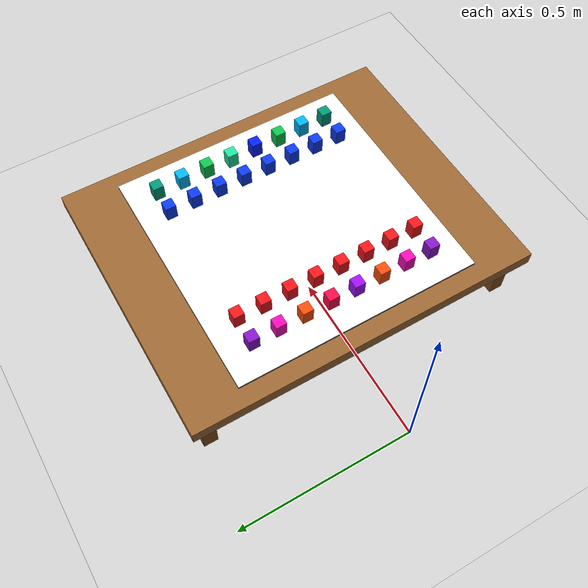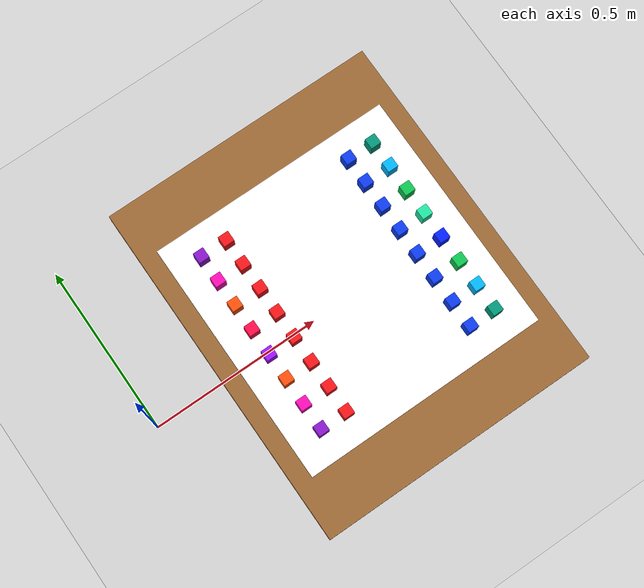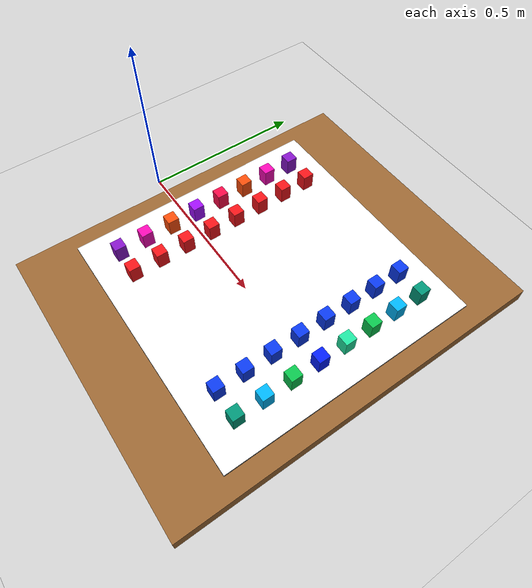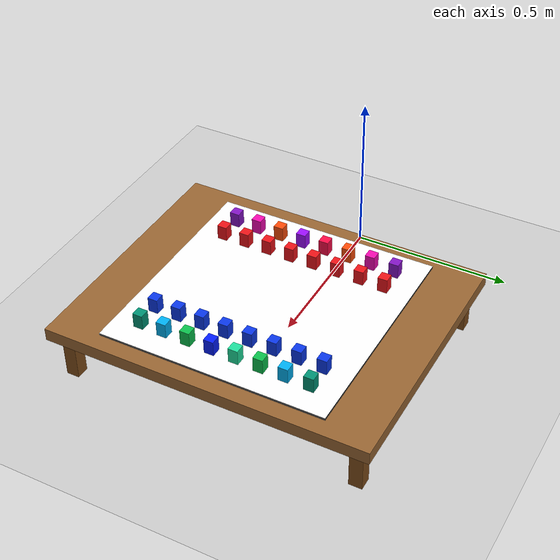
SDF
<?xml version="1.0" ?>
<sdf version="1.9">
  <world name="tabletop_world">
    <!-- GUI (default layout with custom camera pose) -->
    <gui fullscreen='0'>
      <plugin filename="MinimalScene" name="3D View">
        <gz-gui>
          <title>3D View</title>
          <property type="bool" key="showTitleBar">false</property>
          <property type="string" key="state">docked</property>
        </gz-gui>
        <engine>ogre2</engine>
        <scene>scene</scene>
        <ambient_light>0.4 0.4 0.4</ambient_light>
        <background_color>0.8 0.8 0.8</background_color>
        <camera_pose>1.31 0.98 1.07 0 0.39 -2.36</camera_pose>
      </plugin>
      <plugin filename="EntityContextMenuPlugin" name="Entity context menu">
        <gz-gui>
          <property key="state" type="string">floating</property>
          <property key="width" type="double">5</property>
          <property key="height" type="double">5</property>
          <property key="showTitleBar" type="bool">false</property>
        </gz-gui>
      </plugin>
      <plugin filename="GzSceneManager" name="Scene Manager">
        <gz-gui>
          <property key="resizable" type="bool">false</property>
          <property key="width" type="double">5</property>
          <property key="height" type="double">5</property>
          <property key="state" type="string">floating</property>
          <property key="showTitleBar" type="bool">false</property>
        </gz-gui>
      </plugin>
      <plugin filename="InteractiveViewControl" name="Interactive view control">
        <gz-gui>
          <property key="resizable" type="bool">false</property>
          <property key="width" type="double">5</property>
          <property key="height" type="double">5</property>
          <property key="state" type="string">floating</property>
          <property key="showTitleBar" type="bool">false</property>
        </gz-gui>
      </plugin>
      <plugin filename="CameraTracking" name="Camera Tracking">
        <gz-gui>
          <property key="resizable" type="bool">false</property>
          <property key="width" type="double">5</property>
          <property key="height" type="double">5</property>
          <property key="state" type="string">floating</property>
          <property key="showTitleBar" type="bool">false</property>
        </gz-gui>
      </plugin>
      <plugin filename="MarkerManager" name="Marker manager">
        <gz-gui>
          <property key="resizable" type="bool">false</property>
          <property key="width" type="double">5</property>
          <property key="height" type="double">5</property>
          <property key="state" type="string">floating</property>
          <property key="showTitleBar" type="bool">false</property>
        </gz-gui>
      </plugin>
      <plugin filename="SelectEntities" name="Select Entities">
        <gz-gui>
          <property key="resizable" type="bool">false</property>
          <property key="width" type="double">5</property>
          <property key="height" type="double">5</property>
          <property key="state" type="string">floating</property>
          <property key="showTitleBar" type="bool">false</property>
        </gz-gui>
      </plugin>
      <plugin filename="Spawn" name="Spawn Entities">
        <gz-gui>
          <property key="resizable" type="bool">false</property>
          <property key="width" type="double">5</property>
          <property key="height" type="double">5</property>
          <property key="state" type="string">floating</property>
          <property key="showTitleBar" type="bool">false</property>
        </gz-gui>
      </plugin>
      <plugin filename="VisualizationCapabilities" name="Visualization Capabilities">
        <gz-gui>
          <property key="resizable" type="bool">false</property>
          <property key="width" type="double">5</property>
          <property key="height" type="double">5</property>
          <property key="state" type="string">floating</property>
          <property key="showTitleBar" type="bool">false</property>
        </gz-gui>
      </plugin>
      <plugin filename="WorldControl" name="World control">
        <gz-gui>
          <title>World control</title>
          <property type="bool" key="showTitleBar">false</property>
          <property type="bool" key="resizable">false</property>
          <property type="double" key="height">72</property>
          <property type="double" key="z">1</property>
          <property type="string" key="state">floating</property>
          <anchors target="3D View">
            <line own="left" target="left"/>
            <line own="bottom" target="bottom"/>
          </anchors>
        </gz-gui>
        <play_pause>true</play_pause>
        <step>true</step>
        <start_paused>true</start_paused>
        <use_event>true</use_event>
      </plugin>
      <plugin filename="WorldStats" name="World stats">
        <gz-gui>
          <title>World stats</title>
          <property type="bool" key="showTitleBar">false</property>
          <property type="bool" key="resizable">false</property>
          <property type="double" key="height">110</property>
          <property type="double" key="width">290</property>
          <property type="double" key="z">1</property>
          <property type="string" key="state">floating</property>
          <anchors target="3D View">
            <line own="right" target="right"/>
            <line own="bottom" target="bottom"/>
          </anchors>
        </gz-gui>
        <sim_time>true</sim_time>
        <real_time>true</real_time>
        <real_time_factor>true</real_time_factor>
        <iterations>true</iterations>
      </plugin>
      <plugin filename="TransformControl" name="Transform control">
        <gz-gui>
          <property key="resizable" type="bool">false</property>
          <property key="x" type="double">0</property>
          <property key="y" type="double">50</property>
          <property key="width" type="double">250</property>
          <property key="height" type="double">50</property>
          <property key="state" type="string">floating</property>
          <property key="showTitleBar" type="bool">false</property>
          <property key="cardBackground" type="string">#777777</property>
        </gz-gui>
      </plugin>
      <plugin filename="ComponentInspector" name="Component inspector">
        <gz-gui>
          <property type="bool" key="showTitleBar">false</property>
          <property type="string" key="state">docked</property>
        </gz-gui>
      </plugin>
      <plugin filename="EntityTree" name="Entity tree">
        <gz-gui>
          <property type="bool" key="showTitleBar">false</property>
          <property type="string" key="state">docked</property>
        </gz-gui>
      </plugin>
    </gui>

    <!-- Physics -->
    <physics name="1ms" type="ignored">
      <max_step_size>0.001</max_step_size>
      <real_time_factor>1.0</real_time_factor>
    </physics>

    <!-- Plugins -->
    <plugin filename="gz-sim-physics-system" name="gz::sim::systems::Physics"/>
    <plugin filename="gz-sim-user-commands-system" name="gz::sim::systems::UserCommands"/>
    <plugin filename="gz-sim-scene-broadcaster-system" name="gz::sim::systems::SceneBroadcaster"/>
    <plugin filename="gz-sim-contact-system" name="gz::sim::systems::Contact"/>

    <!-- Lighting -->
    <light type="directional" name="sun">
      <cast_shadows>true</cast_shadows>
      <pose>0 0 10 0 0 0</pose>
      <diffuse>0.8 0.8 0.8 1</diffuse>
      <specular>0.2 0.2 0.2 1</specular>
      <attenuation>
        <range>1000</range>
        <constant>0.9</constant>
        <linear>0.01</linear>
        <quadratic>0.001</quadratic>
      </attenuation>
      <direction>-0.5 0.1 -0.9</direction>
    </light>

    <!-- Ground Plane -->
    <model name="ground_plane">
      <static>true</static>
      <link name="link">
        <collision name="collision">
          <geometry>
            <plane>
              <normal>0 0 1</normal>
              <size>100 100</size>
            </plane>
          </geometry>
        </collision>
        <visual name="visual">
          <geometry>
            <plane>
              <normal>0 0 1</normal>
              <size>100 100</size>
            </plane>
          </geometry>
          <material>
            <ambient>0.8 0.8 0.8 1</ambient>
            <diffuse>0.8 0.8 0.8 1</diffuse>
            <specular>0.8 0.8 0.8 1</specular>
          </material>
        </visual>
      </link>
    </model>

    <!-- Table -->
    <model name="table">
      <static>true</static>
      <pose>0.6 0 0 0 0 0</pose>
      <!-- Table top -->
      <link name="table_top">
        <pose>0 0 0.16 0 0 0</pose>
        <collision name="collision">
          <geometry>
            <box>
              <size>0.8 1.0 0.04</size>
            </box>
          </geometry>
        </collision>
        <visual name="visual">
          <geometry>
            <box>
              <size>0.8 1.0 0.04</size>
            </box>
          </geometry>
          <material>
            <ambient>0.6 0.4 0.2 1</ambient>
            <diffuse>0.6 0.4 0.2 1</diffuse>
            <specular>0.1 0.1 0.1 1</specular>
          </material>
        </visual>
      </link>
      <!-- Table legs -->
      <link name="leg1">
        <pose>0.35 0.45 0.07 0 0 0</pose>
        <collision name="collision">
          <geometry>
            <box>
              <size>0.04 0.04 0.14</size>
            </box>
          </geometry>
        </collision>
        <visual name="visual">
          <geometry>
            <box>
              <size>0.04 0.04 0.14</size>
            </box>
          </geometry>
          <material>
            <ambient>0.5 0.3 0.1 1</ambient>
            <diffuse>0.5 0.3 0.1 1</diffuse>
          </material>
        </visual>
      </link>
      <link name="leg2">
        <pose>0.35 -0.45 0.07 0 0 0</pose>
        <collision name="collision">
          <geometry>
            <box>
              <size>0.04 0.04 0.14</size>
            </box>
          </geometry>
        </collision>
        <visual name="visual">
          <geometry>
            <box>
              <size>0.04 0.04 0.14</size>
            </box>
          </geometry>
          <material>
            <ambient>0.5 0.3 0.1 1</ambient>
            <diffuse>0.5 0.3 0.1 1</diffuse>
          </material>
        </visual>
      </link>
      <link name="leg3">
        <pose>-0.35 0.45 0.07 0 0 0</pose>
        <collision name="collision">
          <geometry>
            <box>
              <size>0.04 0.04 0.14</size>
            </box>
          </geometry>
        </collision>
        <visual name="visual">
          <geometry>
            <box>
              <size>0.04 0.04 0.14</size>
            </box>
          </geometry>
          <material>
            <ambient>0.5 0.3 0.1 1</ambient>
            <diffuse>0.5 0.3 0.1 1</diffuse>
          </material>
        </visual>
      </link>
      <link name="leg4">
        <pose>-0.35 -0.45 0.07 0 0 0</pose>
        <collision name="collision">
          <geometry>
            <box>
              <size>0.04 0.04 0.14</size>
            </box>
          </geometry>
        </collision>
        <visual name="visual">
          <geometry>
            <box>
              <size>0.04 0.04 0.14</size>
            </box>
          </geometry>
          <material>
            <ambient>0.5 0.3 0.1 1</ambient>
            <diffuse>0.5 0.3 0.1 1</diffuse>
          </material>
        </visual>
      </link>
      <joint name="leg1_joint" type="fixed">
        <parent>table_top</parent>
        <child>leg1</child>
      </joint>
      <joint name="leg2_joint" type="fixed">
        <parent>table_top</parent>
        <child>leg2</child>
      </joint>
      <joint name="leg3_joint" type="fixed">
        <parent>table_top</parent>
        <child>leg3</child>
      </joint>
      <joint name="leg4_joint" type="fixed">
        <parent>table_top</parent>
        <child>leg4</child>
      </joint>
    </model>

    <!-- Chessboard + pieces sourced from ZeinBarhoum/chess_manipulator -->
    <include>
      <name>chessboard</name>
      <uri>model://chessboard</uri>
      <pose>0.6 0.0 0.182 0 0 1.5708</pose>
      <static>true</static>
    </include>
    <!-- Chess piece colors are assigned per world instance. The shared chess_piece_* models are geometry-only. -->
    <!-- white rook a1 -->
    <model name="piece11">
      <pose>0.335 -0.266 0.209 0 0 0</pose>
      <static>false</static>
      <link name="piece_link">
        <inertial><mass>0.02</mass><inertia><ixx>1.0e-5</ixx><ixy>0.0</ixy><ixz>0.0</ixz><iyy>1.0e-5</iyy><iyz>0.0</iyz><izz>1.0e-5</izz></inertia></inertial>
        <visual name="visual"><geometry><box><size>0.03 0.03 0.05</size></box></geometry><material>
          <ambient>0.32 0.04 0.48 1.0</ambient>
          <diffuse>0.52 0.08 0.78 1.0</diffuse>
          <specular>0.30 0.30 0.30 1.0</specular>
        </material></visual>
        <collision name="collision"><geometry><box><size>0.03 0.03 0.05</size></box></geometry><surface><friction><ode><mu>5.0</mu><mu2>5.0</mu2></ode></friction><contact><ode><kp>200000.0</kp><kd>20.0</kd><max_vel>0.1</max_vel><min_depth>0.001</min_depth></ode></contact></surface></collision>
      </link>
    </model>
    <!-- white knight b1 -->
    <model name="piece12">
      <pose>0.335 -0.190 0.209 0 0 0</pose>
      <static>false</static>
      <link name="piece_link">
        <inertial><mass>0.02</mass><inertia><ixx>1.0e-5</ixx><ixy>0.0</ixy><ixz>0.0</ixz><iyy>1.0e-5</iyy><iyz>0.0</iyz><izz>1.0e-5</izz></inertia></inertial>
        <visual name="visual"><geometry><box><size>0.03 0.03 0.05</size></box></geometry><material>
          <ambient>0.62 0.00 0.42 1.0</ambient>
          <diffuse>0.96 0.04 0.70 1.0</diffuse>
          <specular>0.30 0.30 0.30 1.0</specular>
        </material></visual>
        <collision name="collision"><geometry><box><size>0.03 0.03 0.05</size></box></geometry><surface><friction><ode><mu>5.0</mu><mu2>5.0</mu2></ode></friction><contact><ode><kp>200000.0</kp><kd>20.0</kd><max_vel>0.1</max_vel><min_depth>0.001</min_depth></ode></contact></surface></collision>
      </link>
    </model>
    <!-- white bishop c1 -->
    <model name="piece13">
      <pose>0.335 -0.114 0.209 0 0 0</pose>
      <static>false</static>
      <link name="piece_link">
        <inertial><mass>0.02</mass><inertia><ixx>1.0e-5</ixx><ixy>0.0</ixy><ixz>0.0</ixz><iyy>1.0e-5</iyy><iyz>0.0</iyz><izz>1.0e-5</izz></inertia></inertial>
        <visual name="visual"><geometry><box><size>0.03 0.03 0.05</size></box></geometry><material>
          <ambient>0.74 0.18 0.02 1.0</ambient>
          <diffuse>1.00 0.30 0.04 1.0</diffuse>
          <specular>0.30 0.30 0.30 1.0</specular>
        </material></visual>
        <collision name="collision"><geometry><box><size>0.03 0.03 0.05</size></box></geometry><surface><friction><ode><mu>5.0</mu><mu2>5.0</mu2></ode></friction><contact><ode><kp>200000.0</kp><kd>20.0</kd><max_vel>0.1</max_vel><min_depth>0.001</min_depth></ode></contact></surface></collision>
      </link>
    </model>
    <!-- white queen d1 -->
    <model name="piece14">
      <pose>0.335 -0.038 0.209 0 0 0</pose>
      <static>false</static>
      <link name="piece_link">
        <inertial><mass>0.02</mass><inertia><ixx>1.0e-5</ixx><ixy>0.0</ixy><ixz>0.0</ixz><iyy>1.0e-5</iyy><iyz>0.0</iyz><izz>1.0e-5</izz></inertia></inertial>
        <visual name="visual"><geometry><box><size>0.03 0.03 0.05</size></box></geometry><material>
          <ambient>0.38 0.02 0.70 1.0</ambient>
          <diffuse>0.62 0.06 1.00 1.0</diffuse>
          <specular>0.30 0.30 0.30 1.0</specular>
        </material></visual>
        <collision name="collision"><geometry><box><size>0.03 0.03 0.05</size></box></geometry><surface><friction><ode><mu>5.0</mu><mu2>5.0</mu2></ode></friction><contact><ode><kp>200000.0</kp><kd>20.0</kd><max_vel>0.1</max_vel><min_depth>0.001</min_depth></ode></contact></surface></collision>
      </link>
    </model>
    <!-- white king e1 -->
    <model name="piece15">
      <pose>0.335 0.038 0.209 0 0 0</pose>
      <static>false</static>
      <link name="piece_link">
        <inertial><mass>0.02</mass><inertia><ixx>1.0e-5</ixx><ixy>0.0</ixy><ixz>0.0</ixz><iyy>1.0e-5</iyy><iyz>0.0</iyz><izz>1.0e-5</izz></inertia></inertial>
        <visual name="visual"><geometry><box><size>0.03 0.03 0.05</size></box></geometry><material>
          <ambient>0.72 0.00 0.18 1.0</ambient>
          <diffuse>1.00 0.04 0.28 1.0</diffuse>
          <specular>0.30 0.30 0.30 1.0</specular>
        </material></visual>
        <collision name="collision"><geometry><box><size>0.03 0.03 0.05</size></box></geometry><surface><friction><ode><mu>5.0</mu><mu2>5.0</mu2></ode></friction><contact><ode><kp>200000.0</kp><kd>20.0</kd><max_vel>0.1</max_vel><min_depth>0.001</min_depth></ode></contact></surface></collision>
      </link>
    </model>
    <!-- white bishop f1 -->
    <model name="piece16">
      <pose>0.335 0.114 0.209 0 0 0</pose>
      <static>false</static>
      <link name="piece_link">
        <inertial><mass>0.02</mass><inertia><ixx>1.0e-5</ixx><ixy>0.0</ixy><ixz>0.0</ixz><iyy>1.0e-5</iyy><iyz>0.0</iyz><izz>1.0e-5</izz></inertia></inertial>
        <visual name="visual"><geometry><box><size>0.03 0.03 0.05</size></box></geometry><material>
          <ambient>0.74 0.18 0.02 1.0</ambient>
          <diffuse>1.00 0.30 0.04 1.0</diffuse>
          <specular>0.30 0.30 0.30 1.0</specular>
        </material></visual>
        <collision name="collision"><geometry><box><size>0.03 0.03 0.05</size></box></geometry><surface><friction><ode><mu>5.0</mu><mu2>5.0</mu2></ode></friction><contact><ode><kp>200000.0</kp><kd>20.0</kd><max_vel>0.1</max_vel><min_depth>0.001</min_depth></ode></contact></surface></collision>
      </link>
    </model>
    <!-- white knight g1 -->
    <model name="piece17">
      <pose>0.335 0.190 0.209 0 0 0</pose>
      <static>false</static>
      <link name="piece_link">
        <inertial><mass>0.02</mass><inertia><ixx>1.0e-5</ixx><ixy>0.0</ixy><ixz>0.0</ixz><iyy>1.0e-5</iyy><iyz>0.0</iyz><izz>1.0e-5</izz></inertia></inertial>
        <visual name="visual"><geometry><box><size>0.03 0.03 0.05</size></box></geometry><material>
          <ambient>0.62 0.00 0.42 1.0</ambient>
          <diffuse>0.96 0.04 0.70 1.0</diffuse>
          <specular>0.30 0.30 0.30 1.0</specular>
        </material></visual>
        <collision name="collision"><geometry><box><size>0.03 0.03 0.05</size></box></geometry><surface><friction><ode><mu>5.0</mu><mu2>5.0</mu2></ode></friction><contact><ode><kp>200000.0</kp><kd>20.0</kd><max_vel>0.1</max_vel><min_depth>0.001</min_depth></ode></contact></surface></collision>
      </link>
    </model>
    <!-- white rook h1 -->
    <model name="piece18">
      <pose>0.335 0.266 0.209 0 0 0</pose>
      <static>false</static>
      <link name="piece_link">
        <inertial><mass>0.02</mass><inertia><ixx>1.0e-5</ixx><ixy>0.0</ixy><ixz>0.0</ixz><iyy>1.0e-5</iyy><iyz>0.0</iyz><izz>1.0e-5</izz></inertia></inertial>
        <visual name="visual"><geometry><box><size>0.03 0.03 0.05</size></box></geometry><material>
          <ambient>0.32 0.04 0.48 1.0</ambient>
          <diffuse>0.52 0.08 0.78 1.0</diffuse>
          <specular>0.30 0.30 0.30 1.0</specular>
        </material></visual>
        <collision name="collision"><geometry><box><size>0.03 0.03 0.05</size></box></geometry><surface><friction><ode><mu>5.0</mu><mu2>5.0</mu2></ode></friction><contact><ode><kp>200000.0</kp><kd>20.0</kd><max_vel>0.1</max_vel><min_depth>0.001</min_depth></ode></contact></surface></collision>
      </link>
    </model>
    <!-- white pawn a2 -->
    <model name="piece21">
      <pose>0.411 -0.266 0.209 0 0 0</pose>
      <static>false</static>
      <link name="piece_link">
        <inertial><mass>0.02</mass><inertia><ixx>1.0e-5</ixx><ixy>0.0</ixy><ixz>0.0</ixz><iyy>1.0e-5</iyy><iyz>0.0</iyz><izz>1.0e-5</izz></inertia></inertial>
        <visual name="visual"><geometry><box><size>0.03 0.03 0.05</size></box></geometry><material>
          <ambient>0.62 0.04 0.06 1.0</ambient>
          <diffuse>0.94 0.08 0.10 1.0</diffuse>
          <specular>0.30 0.30 0.30 1.0</specular>
        </material></visual>
        <collision name="collision"><geometry><box><size>0.03 0.03 0.05</size></box></geometry><surface><friction><ode><mu>5.0</mu><mu2>5.0</mu2></ode></friction><contact><ode><kp>200000.0</kp><kd>20.0</kd><max_vel>0.1</max_vel><min_depth>0.001</min_depth></ode></contact></surface></collision>
      </link>
    </model>
    <!-- white pawn b2 -->
    <model name="piece22">
      <pose>0.411 -0.190 0.209 0 0 0</pose>
      <static>false</static>
      <link name="piece_link">
        <inertial><mass>0.02</mass><inertia><ixx>1.0e-5</ixx><ixy>0.0</ixy><ixz>0.0</ixz><iyy>1.0e-5</iyy><iyz>0.0</iyz><izz>1.0e-5</izz></inertia></inertial>
        <visual name="visual"><geometry><box><size>0.03 0.03 0.05</size></box></geometry><material>
          <ambient>0.62 0.04 0.06 1.0</ambient>
          <diffuse>0.94 0.08 0.10 1.0</diffuse>
          <specular>0.30 0.30 0.30 1.0</specular>
        </material></visual>
        <collision name="collision"><geometry><box><size>0.03 0.03 0.05</size></box></geometry><surface><friction><ode><mu>5.0</mu><mu2>5.0</mu2></ode></friction><contact><ode><kp>200000.0</kp><kd>20.0</kd><max_vel>0.1</max_vel><min_depth>0.001</min_depth></ode></contact></surface></collision>
      </link>
    </model>
    <!-- white pawn c2 -->
    <model name="piece23">
      <pose>0.411 -0.114 0.209 0 0 0</pose>
      <static>false</static>
      <link name="piece_link">
        <inertial><mass>0.02</mass><inertia><ixx>1.0e-5</ixx><ixy>0.0</ixy><ixz>0.0</ixz><iyy>1.0e-5</iyy><iyz>0.0</iyz><izz>1.0e-5</izz></inertia></inertial>
        <visual name="visual"><geometry><box><size>0.03 0.03 0.05</size></box></geometry><material>
          <ambient>0.62 0.04 0.06 1.0</ambient>
          <diffuse>0.94 0.08 0.10 1.0</diffuse>
          <specular>0.30 0.30 0.30 1.0</specular>
        </material></visual>
        <collision name="collision"><geometry><box><size>0.03 0.03 0.05</size></box></geometry><surface><friction><ode><mu>5.0</mu><mu2>5.0</mu2></ode></friction><contact><ode><kp>200000.0</kp><kd>20.0</kd><max_vel>0.1</max_vel><min_depth>0.001</min_depth></ode></contact></surface></collision>
      </link>
    </model>
    <!-- white pawn d2 -->
    <model name="piece24">
      <pose>0.411 -0.038 0.209 0 0 0</pose>
      <static>false</static>
      <link name="piece_link">
        <inertial><mass>0.02</mass><inertia><ixx>1.0e-5</ixx><ixy>0.0</ixy><ixz>0.0</ixz><iyy>1.0e-5</iyy><iyz>0.0</iyz><izz>1.0e-5</izz></inertia></inertial>
        <visual name="visual"><geometry><box><size>0.03 0.03 0.05</size></box></geometry><material>
          <ambient>0.62 0.04 0.06 1.0</ambient>
          <diffuse>0.94 0.08 0.10 1.0</diffuse>
          <specular>0.30 0.30 0.30 1.0</specular>
        </material></visual>
        <collision name="collision"><geometry><box><size>0.03 0.03 0.05</size></box></geometry><surface><friction><ode><mu>5.0</mu><mu2>5.0</mu2></ode></friction><contact><ode><kp>200000.0</kp><kd>20.0</kd><max_vel>0.1</max_vel><min_depth>0.001</min_depth></ode></contact></surface></collision>
      </link>
    </model>
    <!-- white pawn e2 -->
    <model name="piece25">
      <pose>0.411 0.038 0.209 0 0 0</pose>
      <static>false</static>
      <link name="piece_link">
        <inertial><mass>0.02</mass><inertia><ixx>1.0e-5</ixx><ixy>0.0</ixy><ixz>0.0</ixz><iyy>1.0e-5</iyy><iyz>0.0</iyz><izz>1.0e-5</izz></inertia></inertial>
        <visual name="visual"><geometry><box><size>0.03 0.03 0.05</size></box></geometry><material>
          <ambient>0.62 0.04 0.06 1.0</ambient>
          <diffuse>0.94 0.08 0.10 1.0</diffuse>
          <specular>0.30 0.30 0.30 1.0</specular>
        </material></visual>
        <collision name="collision"><geometry><box><size>0.03 0.03 0.05</size></box></geometry><surface><friction><ode><mu>5.0</mu><mu2>5.0</mu2></ode></friction><contact><ode><kp>200000.0</kp><kd>20.0</kd><max_vel>0.1</max_vel><min_depth>0.001</min_depth></ode></contact></surface></collision>
      </link>
    </model>
    <!-- white pawn f2 -->
    <model name="piece26">
      <pose>0.411 0.114 0.209 0 0 0</pose>
      <static>false</static>
      <link name="piece_link">
        <inertial><mass>0.02</mass><inertia><ixx>1.0e-5</ixx><ixy>0.0</ixy><ixz>0.0</ixz><iyy>1.0e-5</iyy><iyz>0.0</iyz><izz>1.0e-5</izz></inertia></inertial>
        <visual name="visual"><geometry><box><size>0.03 0.03 0.05</size></box></geometry><material>
          <ambient>0.62 0.04 0.06 1.0</ambient>
          <diffuse>0.94 0.08 0.10 1.0</diffuse>
          <specular>0.30 0.30 0.30 1.0</specular>
        </material></visual>
        <collision name="collision"><geometry><box><size>0.03 0.03 0.05</size></box></geometry><surface><friction><ode><mu>5.0</mu><mu2>5.0</mu2></ode></friction><contact><ode><kp>200000.0</kp><kd>20.0</kd><max_vel>0.1</max_vel><min_depth>0.001</min_depth></ode></contact></surface></collision>
      </link>
    </model>
    <!-- white pawn g2 -->
    <model name="piece27">
      <pose>0.411 0.190 0.209 0 0 0</pose>
      <static>false</static>
      <link name="piece_link">
        <inertial><mass>0.02</mass><inertia><ixx>1.0e-5</ixx><ixy>0.0</ixy><ixz>0.0</ixz><iyy>1.0e-5</iyy><iyz>0.0</iyz><izz>1.0e-5</izz></inertia></inertial>
        <visual name="visual"><geometry><box><size>0.03 0.03 0.05</size></box></geometry><material>
          <ambient>0.62 0.04 0.06 1.0</ambient>
          <diffuse>0.94 0.08 0.10 1.0</diffuse>
          <specular>0.30 0.30 0.30 1.0</specular>
        </material></visual>
        <collision name="collision"><geometry><box><size>0.03 0.03 0.05</size></box></geometry><surface><friction><ode><mu>5.0</mu><mu2>5.0</mu2></ode></friction><contact><ode><kp>200000.0</kp><kd>20.0</kd><max_vel>0.1</max_vel><min_depth>0.001</min_depth></ode></contact></surface></collision>
      </link>
    </model>
    <!-- white pawn h2 -->
    <model name="piece28">
      <pose>0.411 0.266 0.209 0 0 0</pose>
      <static>false</static>
      <link name="piece_link">
        <inertial><mass>0.02</mass><inertia><ixx>1.0e-5</ixx><ixy>0.0</ixy><ixz>0.0</ixz><iyy>1.0e-5</iyy><iyz>0.0</iyz><izz>1.0e-5</izz></inertia></inertial>
        <visual name="visual"><geometry><box><size>0.03 0.03 0.05</size></box></geometry><material>
          <ambient>0.62 0.04 0.06 1.0</ambient>
          <diffuse>0.94 0.08 0.10 1.0</diffuse>
          <specular>0.30 0.30 0.30 1.0</specular>
        </material></visual>
        <collision name="collision"><geometry><box><size>0.03 0.03 0.05</size></box></geometry><surface><friction><ode><mu>5.0</mu><mu2>5.0</mu2></ode></friction><contact><ode><kp>200000.0</kp><kd>20.0</kd><max_vel>0.1</max_vel><min_depth>0.001</min_depth></ode></contact></surface></collision>
      </link>
    </model>
    <!-- black pawn a7 -->
    <model name="piece71">
      <pose>0.791 -0.266 0.209 0 0 0</pose>
      <static>false</static>
      <link name="piece_link">
        <inertial><mass>0.02</mass><inertia><ixx>1.0e-5</ixx><ixy>0.0</ixy><ixz>0.0</ixz><iyy>1.0e-5</iyy><iyz>0.0</iyz><izz>1.0e-5</izz></inertia></inertial>
        <visual name="visual"><geometry><box><size>0.03 0.03 0.05</size></box></geometry><material>
          <ambient>0.02 0.12 0.52 1.0</ambient>
          <diffuse>0.04 0.22 0.92 1.0</diffuse>
          <specular>0.30 0.30 0.30 1.0</specular>
        </material></visual>
        <collision name="collision"><geometry><box><size>0.03 0.03 0.05</size></box></geometry><surface><friction><ode><mu>5.0</mu><mu2>5.0</mu2></ode></friction><contact><ode><kp>200000.0</kp><kd>20.0</kd><max_vel>0.1</max_vel><min_depth>0.001</min_depth></ode></contact></surface></collision>
      </link>
    </model>
    <!-- black pawn b7 -->
    <model name="piece72">
      <pose>0.791 -0.190 0.209 0 0 0</pose>
      <static>false</static>
      <link name="piece_link">
        <inertial><mass>0.02</mass><inertia><ixx>1.0e-5</ixx><ixy>0.0</ixy><ixz>0.0</ixz><iyy>1.0e-5</iyy><iyz>0.0</iyz><izz>1.0e-5</izz></inertia></inertial>
        <visual name="visual"><geometry><box><size>0.03 0.03 0.05</size></box></geometry><material>
          <ambient>0.02 0.12 0.52 1.0</ambient>
          <diffuse>0.04 0.22 0.92 1.0</diffuse>
          <specular>0.30 0.30 0.30 1.0</specular>
        </material></visual>
        <collision name="collision"><geometry><box><size>0.03 0.03 0.05</size></box></geometry><surface><friction><ode><mu>5.0</mu><mu2>5.0</mu2></ode></friction><contact><ode><kp>200000.0</kp><kd>20.0</kd><max_vel>0.1</max_vel><min_depth>0.001</min_depth></ode></contact></surface></collision>
      </link>
    </model>
    <!-- black pawn c7 -->
    <model name="piece73">
      <pose>0.791 -0.114 0.209 0 0 0</pose>
      <static>false</static>
      <link name="piece_link">
        <inertial><mass>0.02</mass><inertia><ixx>1.0e-5</ixx><ixy>0.0</ixy><ixz>0.0</ixz><iyy>1.0e-5</iyy><iyz>0.0</iyz><izz>1.0e-5</izz></inertia></inertial>
        <visual name="visual"><geometry><box><size>0.03 0.03 0.05</size></box></geometry><material>
          <ambient>0.02 0.12 0.52 1.0</ambient>
          <diffuse>0.04 0.22 0.92 1.0</diffuse>
          <specular>0.30 0.30 0.30 1.0</specular>
        </material></visual>
        <collision name="collision"><geometry><box><size>0.03 0.03 0.05</size></box></geometry><surface><friction><ode><mu>5.0</mu><mu2>5.0</mu2></ode></friction><contact><ode><kp>200000.0</kp><kd>20.0</kd><max_vel>0.1</max_vel><min_depth>0.001</min_depth></ode></contact></surface></collision>
      </link>
    </model>
    <!-- black pawn d7 -->
    <model name="piece74">
      <pose>0.791 -0.038 0.209 0 0 0</pose>
      <static>false</static>
      <link name="piece_link">
        <inertial><mass>0.02</mass><inertia><ixx>1.0e-5</ixx><ixy>0.0</ixy><ixz>0.0</ixz><iyy>1.0e-5</iyy><iyz>0.0</iyz><izz>1.0e-5</izz></inertia></inertial>
        <visual name="visual"><geometry><box><size>0.03 0.03 0.05</size></box></geometry><material>
          <ambient>0.02 0.12 0.52 1.0</ambient>
          <diffuse>0.04 0.22 0.92 1.0</diffuse>
          <specular>0.30 0.30 0.30 1.0</specular>
        </material></visual>
        <collision name="collision"><geometry><box><size>0.03 0.03 0.05</size></box></geometry><surface><friction><ode><mu>5.0</mu><mu2>5.0</mu2></ode></friction><contact><ode><kp>200000.0</kp><kd>20.0</kd><max_vel>0.1</max_vel><min_depth>0.001</min_depth></ode></contact></surface></collision>
      </link>
    </model>
    <!-- black pawn e7 -->
    <model name="piece75">
      <pose>0.791 0.038 0.209 0 0 0</pose>
      <static>false</static>
      <link name="piece_link">
        <inertial><mass>0.02</mass><inertia><ixx>1.0e-5</ixx><ixy>0.0</ixy><ixz>0.0</ixz><iyy>1.0e-5</iyy><iyz>0.0</iyz><izz>1.0e-5</izz></inertia></inertial>
        <visual name="visual"><geometry><box><size>0.03 0.03 0.05</size></box></geometry><material>
          <ambient>0.02 0.12 0.52 1.0</ambient>
          <diffuse>0.04 0.22 0.92 1.0</diffuse>
          <specular>0.30 0.30 0.30 1.0</specular>
        </material></visual>
        <collision name="collision"><geometry><box><size>0.03 0.03 0.05</size></box></geometry><surface><friction><ode><mu>5.0</mu><mu2>5.0</mu2></ode></friction><contact><ode><kp>200000.0</kp><kd>20.0</kd><max_vel>0.1</max_vel><min_depth>0.001</min_depth></ode></contact></surface></collision>
      </link>
    </model>
    <!-- black pawn f7 -->
    <model name="piece76">
      <pose>0.791 0.114 0.209 0 0 0</pose>
      <static>false</static>
      <link name="piece_link">
        <inertial><mass>0.02</mass><inertia><ixx>1.0e-5</ixx><ixy>0.0</ixy><ixz>0.0</ixz><iyy>1.0e-5</iyy><iyz>0.0</iyz><izz>1.0e-5</izz></inertia></inertial>
        <visual name="visual"><geometry><box><size>0.03 0.03 0.05</size></box></geometry><material>
          <ambient>0.02 0.12 0.52 1.0</ambient>
          <diffuse>0.04 0.22 0.92 1.0</diffuse>
          <specular>0.30 0.30 0.30 1.0</specular>
        </material></visual>
        <collision name="collision"><geometry><box><size>0.03 0.03 0.05</size></box></geometry><surface><friction><ode><mu>5.0</mu><mu2>5.0</mu2></ode></friction><contact><ode><kp>200000.0</kp><kd>20.0</kd><max_vel>0.1</max_vel><min_depth>0.001</min_depth></ode></contact></surface></collision>
      </link>
    </model>
    <!-- black pawn g7 -->
    <model name="piece77">
      <pose>0.791 0.190 0.209 0 0 0</pose>
      <static>false</static>
      <link name="piece_link">
        <inertial><mass>0.02</mass><inertia><ixx>1.0e-5</ixx><ixy>0.0</ixy><ixz>0.0</ixz><iyy>1.0e-5</iyy><iyz>0.0</iyz><izz>1.0e-5</izz></inertia></inertial>
        <visual name="visual"><geometry><box><size>0.03 0.03 0.05</size></box></geometry><material>
          <ambient>0.02 0.12 0.52 1.0</ambient>
          <diffuse>0.04 0.22 0.92 1.0</diffuse>
          <specular>0.30 0.30 0.30 1.0</specular>
        </material></visual>
        <collision name="collision"><geometry><box><size>0.03 0.03 0.05</size></box></geometry><surface><friction><ode><mu>5.0</mu><mu2>5.0</mu2></ode></friction><contact><ode><kp>200000.0</kp><kd>20.0</kd><max_vel>0.1</max_vel><min_depth>0.001</min_depth></ode></contact></surface></collision>
      </link>
    </model>
    <!-- black pawn h7 -->
    <model name="piece78">
      <pose>0.791 0.266 0.209 0 0 0</pose>
      <static>false</static>
      <link name="piece_link">
        <inertial><mass>0.02</mass><inertia><ixx>1.0e-5</ixx><ixy>0.0</ixy><ixz>0.0</ixz><iyy>1.0e-5</iyy><iyz>0.0</iyz><izz>1.0e-5</izz></inertia></inertial>
        <visual name="visual"><geometry><box><size>0.03 0.03 0.05</size></box></geometry><material>
          <ambient>0.02 0.12 0.52 1.0</ambient>
          <diffuse>0.04 0.22 0.92 1.0</diffuse>
          <specular>0.30 0.30 0.30 1.0</specular>
        </material></visual>
        <collision name="collision"><geometry><box><size>0.03 0.03 0.05</size></box></geometry><surface><friction><ode><mu>5.0</mu><mu2>5.0</mu2></ode></friction><contact><ode><kp>200000.0</kp><kd>20.0</kd><max_vel>0.1</max_vel><min_depth>0.001</min_depth></ode></contact></surface></collision>
      </link>
    </model>
    <!-- black rook a8 -->
    <model name="piece81">
      <pose>0.867 -0.266 0.209 0 0 0</pose>
      <static>false</static>
      <link name="piece_link">
        <inertial><mass>0.02</mass><inertia><ixx>1.0e-5</ixx><ixy>0.0</ixy><ixz>0.0</ixz><iyy>1.0e-5</iyy><iyz>0.0</iyz><izz>1.0e-5</izz></inertia></inertial>
        <visual name="visual"><geometry><box><size>0.03 0.03 0.05</size></box></geometry><material>
          <ambient>0.00 0.34 0.28 1.0</ambient>
          <diffuse>0.00 0.58 0.46 1.0</diffuse>
          <specular>0.30 0.30 0.30 1.0</specular>
        </material></visual>
        <collision name="collision"><geometry><box><size>0.03 0.03 0.05</size></box></geometry><surface><friction><ode><mu>5.0</mu><mu2>5.0</mu2></ode></friction><contact><ode><kp>200000.0</kp><kd>20.0</kd><max_vel>0.1</max_vel><min_depth>0.001</min_depth></ode></contact></surface></collision>
      </link>
    </model>
    <!-- black knight b8 -->
    <model name="piece82">
      <pose>0.867 -0.190 0.209 0 0 0</pose>
      <static>false</static>
      <link name="piece_link">
        <inertial><mass>0.02</mass><inertia><ixx>1.0e-5</ixx><ixy>0.0</ixy><ixz>0.0</ixz><iyy>1.0e-5</iyy><iyz>0.0</iyz><izz>1.0e-5</izz></inertia></inertial>
        <visual name="visual"><geometry><box><size>0.03 0.03 0.05</size></box></geometry><material>
          <ambient>0.00 0.42 0.62 1.0</ambient>
          <diffuse>0.00 0.70 0.96 1.0</diffuse>
          <specular>0.30 0.30 0.30 1.0</specular>
        </material></visual>
        <collision name="collision"><geometry><box><size>0.03 0.03 0.05</size></box></geometry><surface><friction><ode><mu>5.0</mu><mu2>5.0</mu2></ode></friction><contact><ode><kp>200000.0</kp><kd>20.0</kd><max_vel>0.1</max_vel><min_depth>0.001</min_depth></ode></contact></surface></collision>
      </link>
    </model>
    <!-- black bishop c8 -->
    <model name="piece83">
      <pose>0.867 -0.114 0.209 0 0 0</pose>
      <static>false</static>
      <link name="piece_link">
        <inertial><mass>0.02</mass><inertia><ixx>1.0e-5</ixx><ixy>0.0</ixy><ixz>0.0</ixz><iyy>1.0e-5</iyy><iyz>0.0</iyz><izz>1.0e-5</izz></inertia></inertial>
        <visual name="visual"><geometry><box><size>0.03 0.03 0.05</size></box></geometry><material>
          <ambient>0.02 0.46 0.18 1.0</ambient>
          <diffuse>0.04 0.76 0.30 1.0</diffuse>
          <specular>0.30 0.30 0.30 1.0</specular>
        </material></visual>
        <collision name="collision"><geometry><box><size>0.03 0.03 0.05</size></box></geometry><surface><friction><ode><mu>5.0</mu><mu2>5.0</mu2></ode></friction><contact><ode><kp>200000.0</kp><kd>20.0</kd><max_vel>0.1</max_vel><min_depth>0.001</min_depth></ode></contact></surface></collision>
      </link>
    </model>
    <!-- black queen d8 -->
    <model name="piece84">
      <pose>0.867 -0.038 0.209 0 0 0</pose>
      <static>false</static>
      <link name="piece_link">
        <inertial><mass>0.02</mass><inertia><ixx>1.0e-5</ixx><ixy>0.0</ixy><ixz>0.0</ixz><iyy>1.0e-5</iyy><iyz>0.0</iyz><izz>1.0e-5</izz></inertia></inertial>
        <visual name="visual"><geometry><box><size>0.03 0.03 0.05</size></box></geometry><material>
          <ambient>0.00 0.06 0.78 1.0</ambient>
          <diffuse>0.02 0.12 1.00 1.0</diffuse>
          <specular>0.30 0.30 0.30 1.0</specular>
        </material></visual>
        <collision name="collision"><geometry><box><size>0.03 0.03 0.05</size></box></geometry><surface><friction><ode><mu>5.0</mu><mu2>5.0</mu2></ode></friction><contact><ode><kp>200000.0</kp><kd>20.0</kd><max_vel>0.1</max_vel><min_depth>0.001</min_depth></ode></contact></surface></collision>
      </link>
    </model>
    <!-- black king e8 -->
    <model name="piece85">
      <pose>0.867 0.038 0.209 0 0 0</pose>
      <static>false</static>
      <link name="piece_link">
        <inertial><mass>0.02</mass><inertia><ixx>1.0e-5</ixx><ixy>0.0</ixy><ixz>0.0</ixz><iyy>1.0e-5</iyy><iyz>0.0</iyz><izz>1.0e-5</izz></inertia></inertial>
        <visual name="visual"><geometry><box><size>0.03 0.03 0.05</size></box></geometry><material>
          <ambient>0.08 0.52 0.38 1.0</ambient>
          <diffuse>0.12 0.88 0.62 1.0</diffuse>
          <specular>0.30 0.30 0.30 1.0</specular>
        </material></visual>
        <collision name="collision"><geometry><box><size>0.03 0.03 0.05</size></box></geometry><surface><friction><ode><mu>5.0</mu><mu2>5.0</mu2></ode></friction><contact><ode><kp>200000.0</kp><kd>20.0</kd><max_vel>0.1</max_vel><min_depth>0.001</min_depth></ode></contact></surface></collision>
      </link>
    </model>
    <!-- black bishop f8 -->
    <model name="piece86">
      <pose>0.867 0.114 0.209 0 0 0</pose>
      <static>false</static>
      <link name="piece_link">
        <inertial><mass>0.02</mass><inertia><ixx>1.0e-5</ixx><ixy>0.0</ixy><ixz>0.0</ixz><iyy>1.0e-5</iyy><iyz>0.0</iyz><izz>1.0e-5</izz></inertia></inertial>
        <visual name="visual"><geometry><box><size>0.03 0.03 0.05</size></box></geometry><material>
          <ambient>0.02 0.46 0.18 1.0</ambient>
          <diffuse>0.04 0.76 0.30 1.0</diffuse>
          <specular>0.30 0.30 0.30 1.0</specular>
        </material></visual>
        <collision name="collision"><geometry><box><size>0.03 0.03 0.05</size></box></geometry><surface><friction><ode><mu>5.0</mu><mu2>5.0</mu2></ode></friction><contact><ode><kp>200000.0</kp><kd>20.0</kd><max_vel>0.1</max_vel><min_depth>0.001</min_depth></ode></contact></surface></collision>
      </link>
    </model>
    <!-- black knight g8 -->
    <model name="piece87">
      <pose>0.867 0.190 0.209 0 0 0</pose>
      <static>false</static>
      <link name="piece_link">
        <inertial><mass>0.02</mass><inertia><ixx>1.0e-5</ixx><ixy>0.0</ixy><ixz>0.0</ixz><iyy>1.0e-5</iyy><iyz>0.0</iyz><izz>1.0e-5</izz></inertia></inertial>
        <visual name="visual"><geometry><box><size>0.03 0.03 0.05</size></box></geometry><material>
          <ambient>0.00 0.42 0.62 1.0</ambient>
          <diffuse>0.00 0.70 0.96 1.0</diffuse>
          <specular>0.30 0.30 0.30 1.0</specular>
        </material></visual>
        <collision name="collision"><geometry><box><size>0.03 0.03 0.05</size></box></geometry><surface><friction><ode><mu>5.0</mu><mu2>5.0</mu2></ode></friction><contact><ode><kp>200000.0</kp><kd>20.0</kd><max_vel>0.1</max_vel><min_depth>0.001</min_depth></ode></contact></surface></collision>
      </link>
    </model>
    <!-- black rook h8 -->
    <model name="piece88">
      <pose>0.867 0.266 0.209 0 0 0</pose>
      <static>false</static>
      <link name="piece_link">
        <inertial><mass>0.02</mass><inertia><ixx>1.0e-5</ixx><ixy>0.0</ixy><ixz>0.0</ixz><iyy>1.0e-5</iyy><iyz>0.0</iyz><izz>1.0e-5</izz></inertia></inertial>
        <visual name="visual"><geometry><box><size>0.03 0.03 0.05</size></box></geometry><material>
          <ambient>0.00 0.34 0.28 1.0</ambient>
          <diffuse>0.00 0.58 0.46 1.0</diffuse>
          <specular>0.30 0.30 0.30 1.0</specular>
        </material></visual>
        <collision name="collision"><geometry><box><size>0.03 0.03 0.05</size></box></geometry><surface><friction><ode><mu>5.0</mu><mu2>5.0</mu2></ode></friction><contact><ode><kp>200000.0</kp><kd>20.0</kd><max_vel>0.1</max_vel><min_depth>0.001</min_depth></ode></contact></surface></collision>
      </link>
    </model>

    <!-- RGBD Camera -->
  </world>
</sdf>

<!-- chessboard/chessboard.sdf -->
<sdf version="1.9">
  <model name="chessboard">
    <static>true</static>
    <link name="board_link">
      <inertial>
        <mass>0.05</mass>
        <inertia>
          <ixx>0.000015</ixx>
          <ixy>0.0</ixy>
          <ixz>0.0</ixz>
          <iyy>0.000015</iyy>
          <iyz>0.0</iyz>
          <izz>0.0000108</izz>
        </inertia>
      </inertial>

      <collision name="collision">
        <geometry>
          <box>
            <size>0.70 0.70 0.01</size>
          </box>
        </geometry>
        <surface>
          <friction>
            <ode>
              <mu>0.6</mu>
              <mu2>0.6</mu2>
            </ode>
          </friction>
        </surface>
      </collision>

      <!-- Base board body -->
      <visual name="board_base_visual">
        <geometry>
          <box>
            <size>0.70 0.70 0.01</size>
          </box>
        </geometry>
        <material>
          <ambient>0.18 0.18 0.18 1</ambient>
          <diffuse>0.20 0.20 0.20 1</diffuse>
          <specular>0.05 0.05 0.05 1</specular>
        </material>
      </visual>

      <!-- Textured top surface -->
      <visual name="board_texture_visual">
        <pose>0 0 0.0051 0 0 0</pose>
        <geometry>
          <plane>
            <normal>0 0 1</normal>
            <size>0.70 0.70</size>
          </plane>
        </geometry>
        <material>
          <ambient>1 1 1 1</ambient>
          <diffuse>1 1 1 1</diffuse>
          <specular>0.1 0.1 0.1 1</specular>
          <pbr>
            <metal>
              <albedo_map>model://chessboard/meshes/chessboard.png</albedo_map>
              <roughness>0.9</roughness>
              <metalness>0.0</metalness>
            </metal>
          </pbr>
        </material>
      </visual>
    </link>
  </model>
</sdf>
